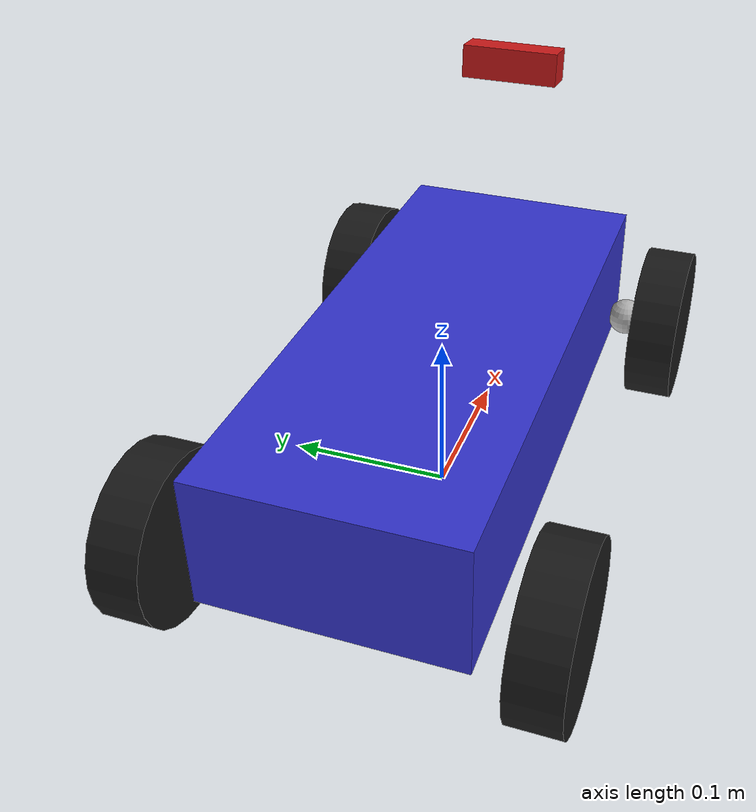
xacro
<?xml version="1.0" encoding="utf-8"?>
<robot name="ackerman_simple">

  <!-- ================= BASE ================= -->
  <link name="base_footprint"/>

  <link name="base_link">
    <inertial>
      <origin xyz="0.0115 0 0.0687" rpy="0 0 0" />
      <mass value="1.8886" />
      <inertia ixx="0.00576" ixy="0.0" ixz="0.000003" iyy="0.01878" iyz="0.0" izz="0.02437" />
    </inertial>

    <!-- Chassis Box -->
    <visual>
      <origin xyz="0.01 0 0.05" rpy="0 0 0" />
      <geometry>
        <box size="0.35 0.15 0.08"/>
      </geometry>
      <material name="blue">
        <color rgba="0.2 0.2 0.8 1" />
      </material>
    </visual>
    <collision>
      <origin xyz="0.01 0 0.05" rpy="0 0 0" />
      <geometry>
        <box size="0.35 0.15 0.08"/>
      </geometry>
    </collision>
  </link>

  <joint name="base_joint" type="fixed">
    <origin xyz="-0.0117 0 0.02677" rpy="0 0 0" />
    <parent link="base_footprint" />
    <child link="base_link" />
  </joint>

  <!-- ================= FRONT LEFT STEERING & WHEEL ================= -->
  <link name="FL_STEERING_LINK">
    <inertial>
      <origin xyz="-0.0029 0 0" rpy="0 0 0" />
      <mass value="0.0038" />
      <inertia ixx="0.0000003" ixy="0" ixz="0" iyy="0.0000006" iyz="0" izz="0.0000003" />
    </inertial>
    <visual>
      <origin xyz="0 0 0" rpy="0 0 0" />
      <geometry>
        <sphere radius="0.012"/>
      </geometry>
      <material name="silver">
        <color rgba="0.7 0.7 0.7 1" />
      </material>
    </visual>
  </link>

  <joint name="FL_STEERING_JOINT" type="revolute">
    <origin xyz="0.16174 0.085 0.0235" rpy="0 0 0" />
    <parent link="base_link" />
    <child link="FL_STEERING_LINK" />
    <axis xyz="0 0 1" />
    <limit lower="-0.524" upper="0.524" effort="5" velocity="3" />
  </joint>

  <link name="FL_WHEEL_LINK">
    <inertial>
      <origin xyz="0 0 0" rpy="0 0 0" />
      <mass value="0.0635" />
      <inertia ixx="0.000046" ixy="0" ixz="0" iyy="0.000089" iyz="0" izz="0.000046" />
    </inertial>
    <visual>
      <origin xyz="0 0 0" rpy="1.57079632679 0 0" />
      <geometry>
        <cylinder radius="0.05027" length="0.03"/>
      </geometry>
      <material name="black"><color rgba="0.1 0.1 0.1 1"/></material>
    </visual>
    <collision>
      <origin xyz="0 0 0" rpy="1.57079632679 0 0" />
      <geometry>
        <cylinder radius="0.05027" length="0.03"/>
      </geometry>
    </collision>
  </link>

  <joint name="FL_WHEEL_JOINT" type="continuous">
    <origin xyz="0 0.0245 0" rpy="0 0 0" />
    <parent link="FL_STEERING_LINK" />
    <child link="FL_WHEEL_LINK" />
    <axis xyz="0 1 0" />
  </joint>

  <!-- ================= FRONT RIGHT STEERING & WHEEL ================= -->
  <link name="FR_STEERING_LINK">
    <inertial>
      <origin xyz="0.0015 0 0" rpy="0 0 0" />
      <mass value="0.0047" />
      <inertia ixx="0.0000003" ixy="0" ixz="0" iyy="0.000001" iyz="0" izz="0.0000007" />
    </inertial>
    <visual>
      <origin xyz="0 0 0" rpy="0 0 0" />
      <geometry>
        <sphere radius="0.012"/>
      </geometry>
      <material name="silver">
        <color rgba="0.7 0.7 0.7 1" />
      </material>
    </visual>
  </link>

  <joint name="FR_STEERING_JOINT" type="revolute">
    <origin xyz="0.16174 -0.085 0.0235" rpy="0 0 0" />
    <parent link="base_link" />
    <child link="FR_STEERING_LINK" />
    <axis xyz="0 0 1" />
    <limit lower="-0.524" upper="0.524" effort="5" velocity="3" />
    <mimic joint="FL_STEERING_JOINT" multiplier="1.0" offset="0.0" />
  </joint>

  <link name="FR_WHEEL_LINK">
    <inertial>
      <origin xyz="0 0 0" rpy="0 0 0" />
      <mass value="0.0635" />
      <inertia ixx="0.000046" ixy="0" ixz="0" iyy="0.000089" iyz="0" izz="0.000046" />
    </inertial>
    <visual>
      <origin xyz="0 0 0" rpy="1.57079632679 0 0" />
      <geometry>
        <cylinder radius="0.05027" length="0.03"/>
      </geometry>
      <material name="black"><color rgba="0.1 0.1 0.1 1"/></material>
    </visual>
    <collision>
      <origin xyz="0 0 0" rpy="1.57079632679 0 0" />
      <geometry>
        <cylinder radius="0.05027" length="0.03"/>
      </geometry>
    </collision>
  </link>

  <joint name="FR_WHEEL_JOINT" type="continuous">
    <origin xyz="0 -0.0245 0" rpy="0 0 0" />
    <parent link="FR_STEERING_LINK" />
    <child link="FR_WHEEL_LINK" />
    <axis xyz="0 1 0" />
  </joint>

  <!-- ================= REAR LEFT WHEEL ================= -->
  <link name="BL_WHEEL_LINK">
    <inertial>
      <origin xyz="0 0 0" rpy="0 0 0" />
      <mass value="0.0616" />
      <inertia ixx="0.000046" ixy="0" ixz="0" iyy="0.000089" iyz="0" izz="0.000046" />
    </inertial>
    <visual>
      <origin xyz="0 0 0" rpy="1.57079632679 0 0" />
      <geometry>
        <cylinder radius="0.05027" length="0.03"/>
      </geometry>
      <material name="black"><color rgba="0.1 0.1 0.1 1"/></material>
    </visual>
    <collision>
      <origin xyz="0 0 0" rpy="1.57079632679 0 0" />
      <geometry>
        <cylinder radius="0.05027" length="0.03"/>
      </geometry>
    </collision>
  </link>

  <joint name="BL_WHEEL_JOINT" type="continuous">
    <!-- Reverted Z back to 0.02075 -->
    <origin xyz="-0.13328 0.1093 0.02075" rpy="0 0 0" />
    <parent link="base_link" />
    <child link="BL_WHEEL_LINK" />
    <axis xyz="0 1 0" />
  </joint>

  <!-- ================= REAR RIGHT WHEEL ================= -->
  <link name="BR_WHEEL_LINK">
    <inertial>
      <origin xyz="0 0 0" rpy="0 0 0" />
      <mass value="0.0616" />
      <inertia ixx="0.000046" ixy="0" ixz="0" iyy="0.000089" iyz="0" izz="0.000046" />
    </inertial>
    <visual>
      <origin xyz="0 0 0" rpy="1.57079632679 0 0" />
      <geometry>
        <cylinder radius="0.05027" length="0.03"/>
      </geometry>
      <material name="black"><color rgba="0.1 0.1 0.1 1"/></material>
    </visual>
    <collision>
      <origin xyz="0 0 0" rpy="1.57079632679 0 0" />
      <geometry>
        <cylinder radius="0.05027" length="0.03"/>
      </geometry>
    </collision>
  </link>

  <joint name="BR_WHEEL_JOINT" type="continuous">
    <!-- Reverted Z back to 0.02075 -->
    <origin xyz="-0.13328 -0.1093 0.02075" rpy="0 0 0" />
    <parent link="base_link" />
    <child link="BR_WHEEL_LINK" />
    <axis xyz="0 1 0" />
  </joint>

    <!-- ================= CAMERA ================= -->
  <link name="CAMERA_LINK">
    <inertial>
      <origin xyz="0 0 0" rpy="0 0 0" />
      <mass value="0.0548" />
      <inertia ixx="0.000069" ixy="0" ixz="0" iyy="0.000004" iyz="0" izz="0.000066" />
    </inertial>
    <visual>
      <origin xyz="0 0 0" rpy="0 0 0" />
      <geometry>
        <box size="0.02 0.06 0.02"/>
      </geometry>
      <material name="red"><color rgba="0.8 0.1 0.1 1"/></material>
    </visual>
    <collision>
      <origin xyz="0 0 0" rpy="0 0 0" />
      <geometry>
        <box size="0.02 0.06 0.02"/>
      </geometry>
    </collision>
  </link>

  <joint name="CAMERA_JOINT" type="fixed">
    <origin xyz="0.15 0.0 0.2" rpy="0 0.1 0" />
    <parent link="base_link" />
    <child link="CAMERA_LINK" />
  </joint>

  <transmission name="FL_STEERING_TRANSMISSION">
    <type>transmission_interface/SimpleTransmission</type>
    <joint name="FL_STEERING_JOINT">
      <hardwareInterface>position</hardwareInterface>
    </joint>
    <actuator name="FL_STEERING_MOTOR">
      <hardwareInterface>position</hardwareInterface>
      <mechanicalReduction>1</mechanicalReduction>
    </actuator>
  </transmission>

  <transmission name="BL_WHEEL_TRANSMISSION">
    <type>transmission_interface/SimpleTransmission</type>
    <joint name="BL_WHEEL_JOINT">
      <hardwareInterface>velocity</hardwareInterface>
    </joint>
    <actuator name="BL_WHEEL_MOTOR">
      <hardwareInterface>velocity</hardwareInterface>
      <mechanicalReduction>1</mechanicalReduction>
    </actuator>
  </transmission>

  <transmission name="BR_WHEEL_TRANSMISSION">
    <type>transmission_interface/SimpleTransmission</type>
    <joint name="BR_WHEEL_JOINT">
      <hardwareInterface>velocity</hardwareInterface>
    </joint>
    <actuator name="BR_WHEEL_MOTOR">
      <hardwareInterface>velocity</hardwareInterface>
      <mechanicalReduction>1</mechanicalReduction>
    </actuator>
  </transmission>

  <ros2_control name="IgnitionGazeboSystem" type="system">
    <hardware>
      <plugin filename="ign_ros2_control/IgnitionSystem">
        <ns>ackermann_simple</ns>
      </plugin>
    </hardware>
    <!-- Front steering (independent, position control) -->
    <joint name="FL_STEERING_JOINT">
      <command_interface name="position"/>
      <state_interface name="position"/>
    </joint>
    <!-- Front steering right (mimicked, state-only feedback) -->
    <joint name="FR_STEERING_JOINT">
      <state_interface name="position"/>
    </joint>
    <!-- Rear wheels (velocity control) -->
    <joint name="BL_WHEEL_JOINT">
      <command_interface name="velocity"/>
      <state_interface name="velocity"/>
    </joint>
    <joint name="BR_WHEEL_JOINT">
      <command_interface name="velocity"/>
      <state_interface name="velocity"/>
    </joint>
  </ros2_control>

  <gazebo>
    <plugin filename="ign_ros2_control::IgnRos2ControlPlugin" name="ign_ros2_control::IgnRos2ControlPlugin">
      <ros_control_config_file>/ackermann_ws/src/ackermann_robot/config/ackermann_control.yaml</ros_control_config_file>
    </plugin>
  </gazebo>

  <gazebo reference="CAMERA_LINK">
    <sensor name="robot_camera" type="camera">
      <camera>
        <horizontal_fov>1.0472</horizontal_fov>
        <image_width>640</image_width>
        <image_height>480</image_height>
        <image_format>R8G8B8</image_format>
        <clip>
          <near>0.05</near>
          <far>100</far>
        </clip>
      </camera>
      <always_on>true</always_on>
      <update_rate>30</update_rate>
      <visualize>false</visualize>
      <topic>/camera/image</topic>
      <plugin filename="ignition::gazebo::systems::Sensors" name="ignition::gazebo::systems::Sensors"/>
    </sensor>
  </gazebo>

</robot>
